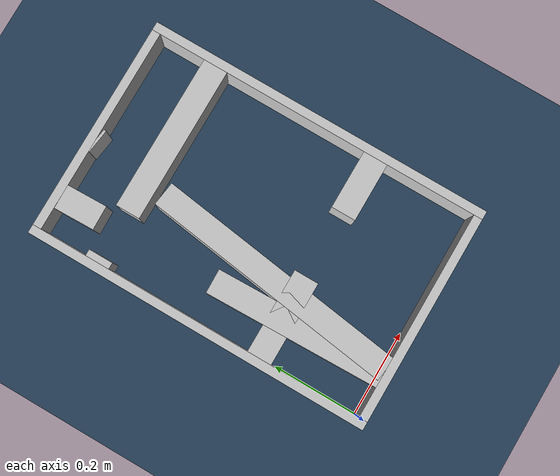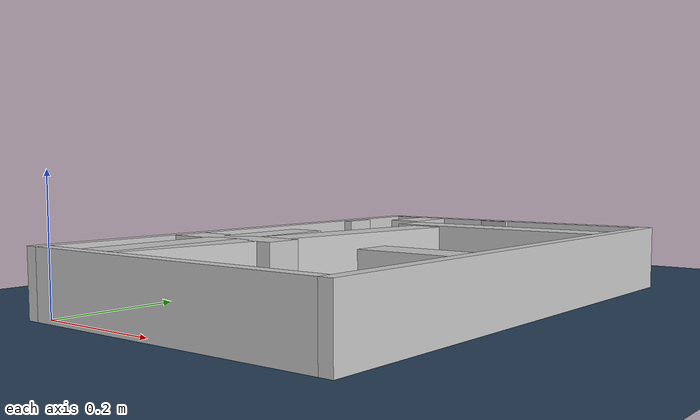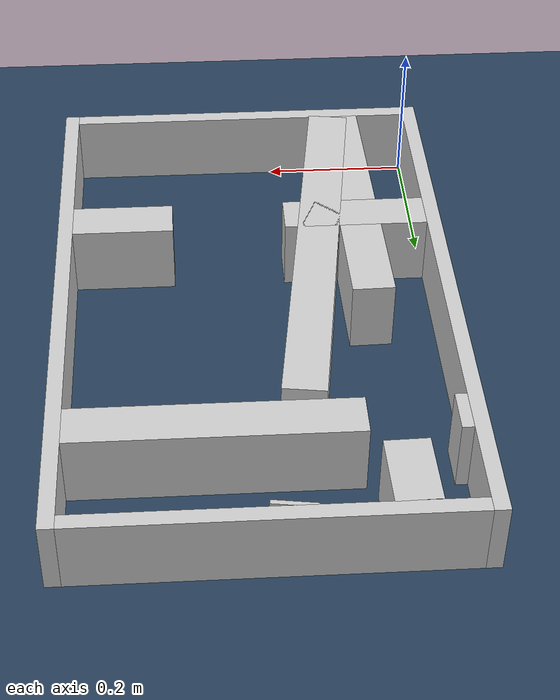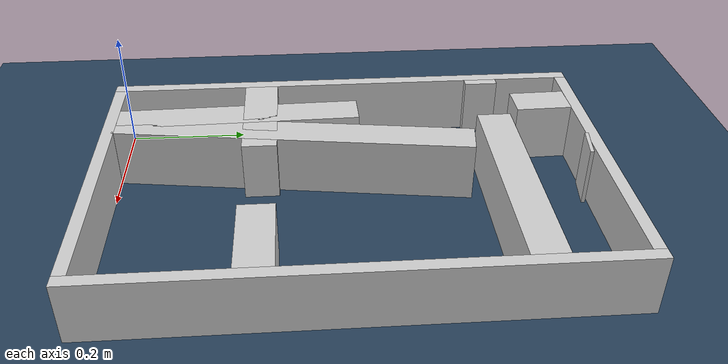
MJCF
<?xml version="1.0" ?>
<mujoco model="generated_real_template">
  <compiler angle="degree"/>
  <option timestep="0.002" integrator="implicitfast" iterations="100" cone="elliptic"/>
  <default>
    <geom density="1"/>
  </default>
  <asset>
    <texture builtin="gradient" height="3072" rgb1="0.3 0.5 0.7" rgb2="0 0 0" type="skybox" width="512"/>
    <texture builtin="checker" height="300" mark="edge" markrgb="0.8 0.8 0.8" name="groundplane" rgb1="0.2 0.3 0.4" rgb2="0.1 0.2 0.3" type="2d" width="300"/>
    <material name="groundplane" reflectance="0.2" texrepeat="5 5" texture="groundplane" texuniform="true"/>
  </asset>
  <worldbody>
    <light dir="0 0 -1" directional="true" pos="0 0 1.5"/>
    <geom name="floor" type="plane" condim="4" friction="0.5 0.005 0.001" material="groundplane" size="0 0 0.05"/>
    <body name="walls">
      <geom name="wall_boundary_left" type="box" condim="4" friction="1.0 0.005 0.0001" rgba="0.8 0.8 0.8 1" pos="-0.010000 0.387500 0.050000" euler="0 0 0.000000" size="0.010000 0.407500 0.050000"/>
      <geom name="wall_boundary_right" type="box" condim="4" friction="1.0 0.005 0.0001" rgba="0.8 0.8 0.8 1" pos="0.500000 0.387500 0.050000" euler="0 0 0.000000" size="0.010000 0.407500 0.050000"/>
      <geom name="wall_boundary_bottom" type="box" condim="4" friction="1.0 0.005 0.0001" rgba="0.8 0.8 0.8 1" pos="0.245000 -0.010000 0.050000" euler="0 0 0.000000" size="0.245000 0.010000 0.050000"/>
      <geom name="wall_boundary_top" type="box" condim="4" friction="1.0 0.005 0.0001" rgba="0.8 0.8 0.8 1" pos="0.245000 0.785000 0.050000" euler="0 0 0.000000" size="0.245000 0.010000 0.050000"/>
      <geom name="wall_inner_1_1" type="box" condim="4" friction="1.0 0.005 0.0001" rgba="0.8 0.8 0.8 1" pos="0.098574 0.240038 0.050000" euler="0 0 0.000000" size="0.098574 0.028500 0.050000"/>
      <geom name="wall_inner_1_2" type="box" condim="4" friction="1.0 0.005 0.0001" rgba="0.8 0.8 0.8 1" pos="0.421065 0.240038 0.050000" euler="0 0 0.000000" size="0.068935 0.028500 0.050000"/>
      <geom name="wall_inner_2_1" type="box" condim="4" friction="1.0 0.005 0.0001" rgba="0.8 0.8 0.8 1" pos="0.007697 0.636157 0.050000" euler="0 0 0.000000" size="0.007697 0.028500 0.050000"/>
      <geom name="wall_inner_2_2" type="box" condim="4" friction="1.0 0.005 0.0001" rgba="0.8 0.8 0.8 1" pos="0.307014 0.636157 0.050000" euler="0 0 0.000000" size="0.182986 0.028500 0.050000"/>
      <geom name="wall_inner_3_1" type="box" condim="4" friction="1.0 0.005 0.0001" rgba="0.8 0.8 0.8 1" pos="0.154871 0.295436 0.050000" euler="0 0 82.041356" size="0.298309 0.028500 0.050000"/>
      <geom name="wall_inner_3_2" type="box" condim="4" friction="1.0 0.005 0.0001" rgba="0.8 0.8 0.8 1" pos="0.221502 0.772035 0.050000" euler="0 0 82.041356" size="0.002993 0.028500 0.050000"/>
      <geom name="wall_inner_4_1" type="box" condim="4" friction="1.0 0.005 0.0001" rgba="0.8 0.8 0.8 1" pos="0.082021 0.727588 0.050000" euler="0 0 -88.663783" size="0.047425 0.028500 0.050000"/>
      <geom name="wall_inner_4_2" type="box" condim="4" friction="1.0 0.005 0.0001" rgba="0.8 0.8 0.8 1" pos="0.094255 0.203089 0.050000" euler="0 0 -88.663783" size="0.203145 0.028500 0.050000"/>
    </body>
  </worldbody>
</mujoco>
